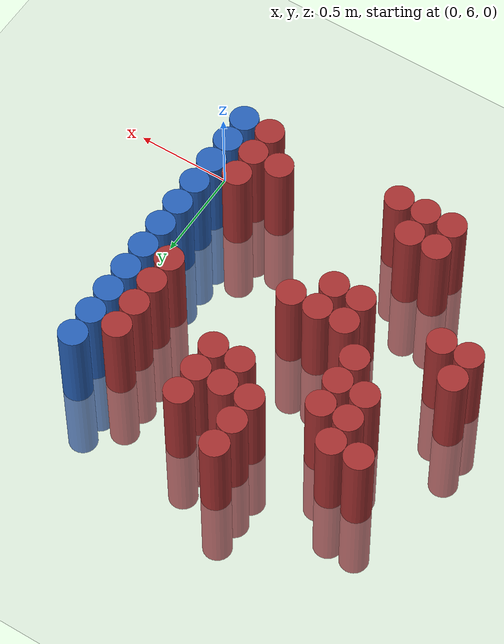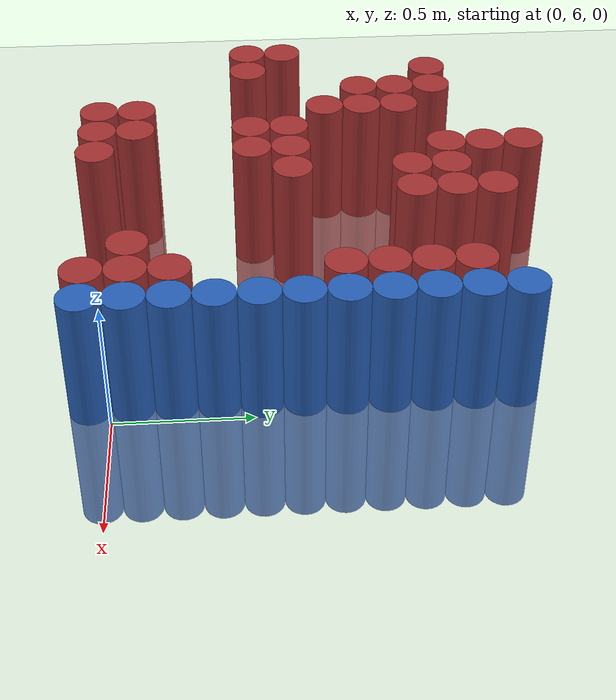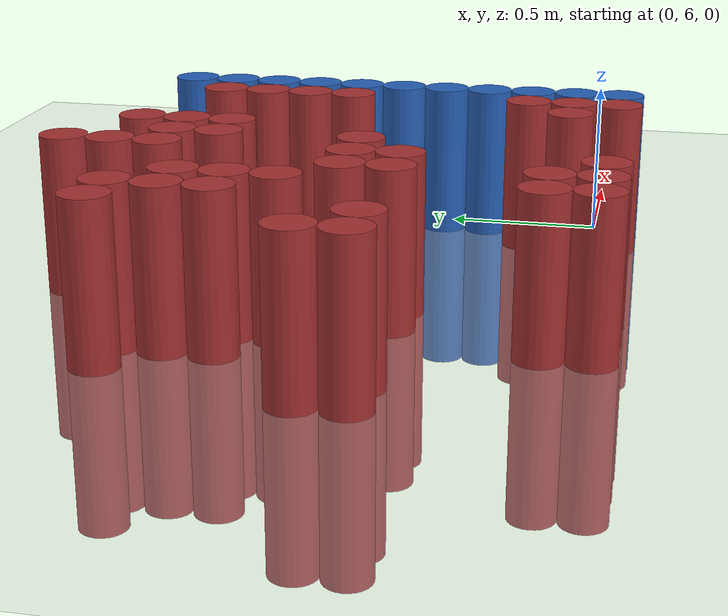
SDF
<sdf version="1.6">
 <world name="default">
  <model name="ground_plane">
   <static>1</static>
   <link name="link">
    <collision name="collision">
     <geometry><plane><normal>0 0 1</normal><size>100 100</size></plane></geometry>
     <surface><friction><ode><mu>100</mu><mu2>50</mu2></ode></friction></surface>
    </collision>
    <visual name="visual">
     <cast_shadows>0</cast_shadows>
     <geometry><plane><normal>0 0 1</normal><size>100 100</size></plane></geometry>
     <material>
      <script><uri>file://media/materials/scripts/gazebo.material</uri><name>Gazebo/Grey</name></script>
     </material>
    </visual>
   </link>
  </model>
  <model name="unit_cylinder_213">
   <static>1</static>
   <pose>-1.725000 6.525000 0.000000 0.000000 0.000000 0.000000</pose>
   <link name="link">
    <inertial>
     <mass>1</mass>
     <inertia><ixx>0.145833</ixx><ixy>0</ixy><ixz>0</ixz><iyy>0.145833</iyy><iyz>0</iyz><izz>0.125</izz></inertia>
    </inertial>
    <collision name="collision">
     <geometry><cylinder><radius>0.075000</radius><length>1</length></cylinder></geometry>
    </collision>
    <visual name="visual">
     <geometry><cylinder><radius>0.075000</radius><length>1</length></cylinder></geometry>
     <material>
      <ambient>0.648000 0.192000 0.192000 1</ambient>
      <diffuse>0.648000 0.192000 0.192000 1</diffuse>
     </material>
     <material>
      <script><name>Gazebo/Grey</name><uri>file://media/materials/scripts/gazebo.material</uri></script>
     </material>
    </visual>
   </link>
  </model>
  <model name="unit_cylinder_214">
   <static>1</static>
   <pose>-1.725000 6.675000 0.000000 0.000000 0.000000 0.000000</pose>
   <link name="link">
    <inertial>
     <mass>1</mass>
     <inertia><ixx>0.145833</ixx><ixy>0</ixy><ixz>0</ixz><iyy>0.145833</iyy><iyz>0</iyz><izz>0.125</izz></inertia>
    </inertial>
    <collision name="collision">
     <geometry><cylinder><radius>0.075000</radius><length>1</length></cylinder></geometry>
    </collision>
    <visual name="visual">
     <geometry><cylinder><radius>0.075000</radius><length>1</length></cylinder></geometry>
     <material>
      <ambient>0.648000 0.192000 0.192000 1</ambient>
      <diffuse>0.648000 0.192000 0.192000 1</diffuse>
     </material>
     <material>
      <script><name>Gazebo/Grey</name><uri>file://media/materials/scripts/gazebo.material</uri></script>
     </material>
    </visual>
   </link>
  </model>
  <model name="unit_cylinder_221">
   <static>1</static>
   <pose>-1.575000 6.525000 0.000000 0.000000 0.000000 0.000000</pose>
   <link name="link">
    <inertial>
     <mass>1</mass>
     <inertia><ixx>0.145833</ixx><ixy>0</ixy><ixz>0</ixz><iyy>0.145833</iyy><iyz>0</iyz><izz>0.125</izz></inertia>
    </inertial>
    <collision name="collision">
     <geometry><cylinder><radius>0.075000</radius><length>1</length></cylinder></geometry>
    </collision>
    <visual name="visual">
     <geometry><cylinder><radius>0.075000</radius><length>1</length></cylinder></geometry>
     <material>
      <ambient>0.648000 0.192000 0.192000 1</ambient>
      <diffuse>0.648000 0.192000 0.192000 1</diffuse>
     </material>
     <material>
      <script><name>Gazebo/Grey</name><uri>file://media/materials/scripts/gazebo.material</uri></script>
     </material>
    </visual>
   </link>
  </model>
  <model name="unit_cylinder_222">
   <static>1</static>
   <pose>-1.575000 7.275000 0.000000 0.000000 0.000000 0.000000</pose>
   <link name="link">
    <inertial>
     <mass>1</mass>
     <inertia><ixx>0.145833</ixx><ixy>0</ixy><ixz>0</ixz><iyy>0.145833</iyy><iyz>0</iyz><izz>0.125</izz></inertia>
    </inertial>
    <collision name="collision">
     <geometry><cylinder><radius>0.075000</radius><length>1</length></cylinder></geometry>
    </collision>
    <visual name="visual">
     <geometry><cylinder><radius>0.075000</radius><length>1</length></cylinder></geometry>
     <material>
      <ambient>0.648000 0.192000 0.192000 1</ambient>
      <diffuse>0.648000 0.192000 0.192000 1</diffuse>
     </material>
     <material>
      <script><name>Gazebo/Grey</name><uri>file://media/materials/scripts/gazebo.material</uri></script>
     </material>
    </visual>
   </link>
  </model>
  <model name="unit_cylinder_228">
   <static>1</static>
   <pose>-1.425000 6.975000 0.000000 0.000000 0.000000 0.000000</pose>
   <link name="link">
    <inertial>
     <mass>1</mass>
     <inertia><ixx>0.145833</ixx><ixy>0</ixy><ixz>0</ixz><iyy>0.145833</iyy><iyz>0</iyz><izz>0.125</izz></inertia>
    </inertial>
    <collision name="collision">
     <geometry><cylinder><radius>0.075000</radius><length>1</length></cylinder></geometry>
    </collision>
    <visual name="visual">
     <geometry><cylinder><radius>0.075000</radius><length>1</length></cylinder></geometry>
     <material>
      <ambient>0.648000 0.192000 0.192000 1</ambient>
      <diffuse>0.648000 0.192000 0.192000 1</diffuse>
     </material>
     <material>
      <script><name>Gazebo/Grey</name><uri>file://media/materials/scripts/gazebo.material</uri></script>
     </material>
    </visual>
   </link>
  </model>
  <model name="unit_cylinder_229">
   <static>1</static>
   <pose>-1.425000 7.125000 0.000000 0.000000 0.000000 0.000000</pose>
   <link name="link">
    <inertial>
     <mass>1</mass>
     <inertia><ixx>0.145833</ixx><ixy>0</ixy><ixz>0</ixz><iyy>0.145833</iyy><iyz>0</iyz><izz>0.125</izz></inertia>
    </inertial>
    <collision name="collision">
     <geometry><cylinder><radius>0.075000</radius><length>1</length></cylinder></geometry>
    </collision>
    <visual name="visual">
     <geometry><cylinder><radius>0.075000</radius><length>1</length></cylinder></geometry>
     <material>
      <ambient>0.648000 0.192000 0.192000 1</ambient>
      <diffuse>0.648000 0.192000 0.192000 1</diffuse>
     </material>
     <material>
      <script><name>Gazebo/Grey</name><uri>file://media/materials/scripts/gazebo.material</uri></script>
     </material>
    </visual>
   </link>
  </model>
  <model name="unit_cylinder_230">
   <static>1</static>
   <pose>-1.425000 7.275000 0.000000 0.000000 0.000000 0.000000</pose>
   <link name="link">
    <inertial>
     <mass>1</mass>
     <inertia><ixx>0.145833</ixx><ixy>0</ixy><ixz>0</ixz><iyy>0.145833</iyy><iyz>0</iyz><izz>0.125</izz></inertia>
    </inertial>
    <collision name="collision">
     <geometry><cylinder><radius>0.075000</radius><length>1</length></cylinder></geometry>
    </collision>
    <visual name="visual">
     <geometry><cylinder><radius>0.075000</radius><length>1</length></cylinder></geometry>
     <material>
      <ambient>0.648000 0.192000 0.192000 1</ambient>
      <diffuse>0.648000 0.192000 0.192000 1</diffuse>
     </material>
     <material>
      <script><name>Gazebo/Grey</name><uri>file://media/materials/scripts/gazebo.material</uri></script>
     </material>
    </visual>
   </link>
  </model>
  <model name="unit_cylinder_232">
   <static>1</static>
   <pose>-1.275000 5.925000 0.000000 0.000000 0.000000 0.000000</pose>
   <link name="link">
    <inertial>
     <mass>1</mass>
     <inertia><ixx>0.145833</ixx><ixy>0</ixy><ixz>0</ixz><iyy>0.145833</iyy><iyz>0</iyz><izz>0.125</izz></inertia>
    </inertial>
    <collision name="collision">
     <geometry><cylinder><radius>0.075000</radius><length>1</length></cylinder></geometry>
    </collision>
    <visual name="visual">
     <geometry><cylinder><radius>0.075000</radius><length>1</length></cylinder></geometry>
     <material>
      <ambient>0.648000 0.192000 0.192000 1</ambient>
      <diffuse>0.648000 0.192000 0.192000 1</diffuse>
     </material>
     <material>
      <script><name>Gazebo/Grey</name><uri>file://media/materials/scripts/gazebo.material</uri></script>
     </material>
    </visual>
   </link>
  </model>
  <model name="unit_cylinder_233">
   <static>1</static>
   <pose>-1.275000 6.075000 0.000000 0.000000 0.000000 0.000000</pose>
   <link name="link">
    <inertial>
     <mass>1</mass>
     <inertia><ixx>0.145833</ixx><ixy>0</ixy><ixz>0</ixz><iyy>0.145833</iyy><iyz>0</iyz><izz>0.125</izz></inertia>
    </inertial>
    <collision name="collision">
     <geometry><cylinder><radius>0.075000</radius><length>1</length></cylinder></geometry>
    </collision>
    <visual name="visual">
     <geometry><cylinder><radius>0.075000</radius><length>1</length></cylinder></geometry>
     <material>
      <ambient>0.648000 0.192000 0.192000 1</ambient>
      <diffuse>0.648000 0.192000 0.192000 1</diffuse>
     </material>
     <material>
      <script><name>Gazebo/Grey</name><uri>file://media/materials/scripts/gazebo.material</uri></script>
     </material>
    </visual>
   </link>
  </model>
  <model name="unit_cylinder_234">
   <static>1</static>
   <pose>-1.275000 6.825000 0.000000 0.000000 0.000000 0.000000</pose>
   <link name="link">
    <inertial>
     <mass>1</mass>
     <inertia><ixx>0.145833</ixx><ixy>0</ixy><ixz>0</ixz><iyy>0.145833</iyy><iyz>0</iyz><izz>0.125</izz></inertia>
    </inertial>
    <collision name="collision">
     <geometry><cylinder><radius>0.075000</radius><length>1</length></cylinder></geometry>
    </collision>
    <visual name="visual">
     <geometry><cylinder><radius>0.075000</radius><length>1</length></cylinder></geometry>
     <material>
      <ambient>0.648000 0.192000 0.192000 1</ambient>
      <diffuse>0.648000 0.192000 0.192000 1</diffuse>
     </material>
     <material>
      <script><name>Gazebo/Grey</name><uri>file://media/materials/scripts/gazebo.material</uri></script>
     </material>
    </visual>
   </link>
  </model>
  <model name="unit_cylinder_235">
   <static>1</static>
   <pose>-1.275000 6.975000 0.000000 0.000000 0.000000 0.000000</pose>
   <link name="link">
    <inertial>
     <mass>1</mass>
     <inertia><ixx>0.145833</ixx><ixy>0</ixy><ixz>0</ixz><iyy>0.145833</iyy><iyz>0</iyz><izz>0.125</izz></inertia>
    </inertial>
    <collision name="collision">
     <geometry><cylinder><radius>0.075000</radius><length>1</length></cylinder></geometry>
    </collision>
    <visual name="visual">
     <geometry><cylinder><radius>0.075000</radius><length>1</length></cylinder></geometry>
     <material>
      <ambient>0.648000 0.192000 0.192000 1</ambient>
      <diffuse>0.648000 0.192000 0.192000 1</diffuse>
     </material>
     <material>
      <script><name>Gazebo/Grey</name><uri>file://media/materials/scripts/gazebo.material</uri></script>
     </material>
    </visual>
   </link>
  </model>
  <model name="unit_cylinder_236">
   <static>1</static>
   <pose>-1.275000 7.125000 0.000000 0.000000 0.000000 0.000000</pose>
   <link name="link">
    <inertial>
     <mass>1</mass>
     <inertia><ixx>0.145833</ixx><ixy>0</ixy><ixz>0</ixz><iyy>0.145833</iyy><iyz>0</iyz><izz>0.125</izz></inertia>
    </inertial>
    <collision name="collision">
     <geometry><cylinder><radius>0.075000</radius><length>1</length></cylinder></geometry>
    </collision>
    <visual name="visual">
     <geometry><cylinder><radius>0.075000</radius><length>1</length></cylinder></geometry>
     <material>
      <ambient>0.648000 0.192000 0.192000 1</ambient>
      <diffuse>0.648000 0.192000 0.192000 1</diffuse>
     </material>
     <material>
      <script><name>Gazebo/Grey</name><uri>file://media/materials/scripts/gazebo.material</uri></script>
     </material>
    </visual>
   </link>
  </model>
  <model name="unit_cylinder_241">
   <static>1</static>
   <pose>-1.125000 5.925000 0.000000 0.000000 0.000000 0.000000</pose>
   <link name="link">
    <inertial>
     <mass>1</mass>
     <inertia><ixx>0.145833</ixx><ixy>0</ixy><ixz>0</ixz><iyy>0.145833</iyy><iyz>0</iyz><izz>0.125</izz></inertia>
    </inertial>
    <collision name="collision">
     <geometry><cylinder><radius>0.075000</radius><length>1</length></cylinder></geometry>
    </collision>
    <visual name="visual">
     <geometry><cylinder><radius>0.075000</radius><length>1</length></cylinder></geometry>
     <material>
      <ambient>0.648000 0.192000 0.192000 1</ambient>
      <diffuse>0.648000 0.192000 0.192000 1</diffuse>
     </material>
     <material>
      <script><name>Gazebo/Grey</name><uri>file://media/materials/scripts/gazebo.material</uri></script>
     </material>
    </visual>
   </link>
  </model>
  <model name="unit_cylinder_242">
   <static>1</static>
   <pose>-1.125000 6.075000 0.000000 0.000000 0.000000 0.000000</pose>
   <link name="link">
    <inertial>
     <mass>1</mass>
     <inertia><ixx>0.145833</ixx><ixy>0</ixy><ixz>0</ixz><iyy>0.145833</iyy><iyz>0</iyz><izz>0.125</izz></inertia>
    </inertial>
    <collision name="collision">
     <geometry><cylinder><radius>0.075000</radius><length>1</length></cylinder></geometry>
    </collision>
    <visual name="visual">
     <geometry><cylinder><radius>0.075000</radius><length>1</length></cylinder></geometry>
     <material>
      <ambient>0.648000 0.192000 0.192000 1</ambient>
      <diffuse>0.648000 0.192000 0.192000 1</diffuse>
     </material>
     <material>
      <script><name>Gazebo/Grey</name><uri>file://media/materials/scripts/gazebo.material</uri></script>
     </material>
    </visual>
   </link>
  </model>
  <model name="unit_cylinder_243">
   <static>1</static>
   <pose>-1.125000 6.525000 0.000000 0.000000 0.000000 0.000000</pose>
   <link name="link">
    <inertial>
     <mass>1</mass>
     <inertia><ixx>0.145833</ixx><ixy>0</ixy><ixz>0</ixz><iyy>0.145833</iyy><iyz>0</iyz><izz>0.125</izz></inertia>
    </inertial>
    <collision name="collision">
     <geometry><cylinder><radius>0.075000</radius><length>1</length></cylinder></geometry>
    </collision>
    <visual name="visual">
     <geometry><cylinder><radius>0.075000</radius><length>1</length></cylinder></geometry>
     <material>
      <ambient>0.648000 0.192000 0.192000 1</ambient>
      <diffuse>0.648000 0.192000 0.192000 1</diffuse>
     </material>
     <material>
      <script><name>Gazebo/Grey</name><uri>file://media/materials/scripts/gazebo.material</uri></script>
     </material>
    </visual>
   </link>
  </model>
  <model name="unit_cylinder_244">
   <static>1</static>
   <pose>-1.125000 6.675000 0.000000 0.000000 0.000000 0.000000</pose>
   <link name="link">
    <inertial>
     <mass>1</mass>
     <inertia><ixx>0.145833</ixx><ixy>0</ixy><ixz>0</ixz><iyy>0.145833</iyy><iyz>0</iyz><izz>0.125</izz></inertia>
    </inertial>
    <collision name="collision">
     <geometry><cylinder><radius>0.075000</radius><length>1</length></cylinder></geometry>
    </collision>
    <visual name="visual">
     <geometry><cylinder><radius>0.075000</radius><length>1</length></cylinder></geometry>
     <material>
      <ambient>0.648000 0.192000 0.192000 1</ambient>
      <diffuse>0.648000 0.192000 0.192000 1</diffuse>
     </material>
     <material>
      <script><name>Gazebo/Grey</name><uri>file://media/materials/scripts/gazebo.material</uri></script>
     </material>
    </visual>
   </link>
  </model>
  <model name="unit_cylinder_252">
   <static>1</static>
   <pose>-0.975000 5.925000 0.000000 0.000000 0.000000 0.000000</pose>
   <link name="link">
    <inertial>
     <mass>1</mass>
     <inertia><ixx>0.145833</ixx><ixy>0</ixy><ixz>0</ixz><iyy>0.145833</iyy><iyz>0</iyz><izz>0.125</izz></inertia>
    </inertial>
    <collision name="collision">
     <geometry><cylinder><radius>0.075000</radius><length>1</length></cylinder></geometry>
    </collision>
    <visual name="visual">
     <geometry><cylinder><radius>0.075000</radius><length>1</length></cylinder></geometry>
     <material>
      <ambient>0.648000 0.192000 0.192000 1</ambient>
      <diffuse>0.648000 0.192000 0.192000 1</diffuse>
     </material>
     <material>
      <script><name>Gazebo/Grey</name><uri>file://media/materials/scripts/gazebo.material</uri></script>
     </material>
    </visual>
   </link>
  </model>
  <model name="unit_cylinder_253">
   <static>1</static>
   <pose>-0.975000 6.525000 0.000000 0.000000 0.000000 0.000000</pose>
   <link name="link">
    <inertial>
     <mass>1</mass>
     <inertia><ixx>0.145833</ixx><ixy>0</ixy><ixz>0</ixz><iyy>0.145833</iyy><iyz>0</iyz><izz>0.125</izz></inertia>
    </inertial>
    <collision name="collision">
     <geometry><cylinder><radius>0.075000</radius><length>1</length></cylinder></geometry>
    </collision>
    <visual name="visual">
     <geometry><cylinder><radius>0.075000</radius><length>1</length></cylinder></geometry>
     <material>
      <ambient>0.648000 0.192000 0.192000 1</ambient>
      <diffuse>0.648000 0.192000 0.192000 1</diffuse>
     </material>
     <material>
      <script><name>Gazebo/Grey</name><uri>file://media/materials/scripts/gazebo.material</uri></script>
     </material>
    </visual>
   </link>
  </model>
  <model name="unit_cylinder_254">
   <static>1</static>
   <pose>-0.975000 6.675000 0.000000 0.000000 0.000000 0.000000</pose>
   <link name="link">
    <inertial>
     <mass>1</mass>
     <inertia><ixx>0.145833</ixx><ixy>0</ixy><ixz>0</ixz><iyy>0.145833</iyy><iyz>0</iyz><izz>0.125</izz></inertia>
    </inertial>
    <collision name="collision">
     <geometry><cylinder><radius>0.075000</radius><length>1</length></cylinder></geometry>
    </collision>
    <visual name="visual">
     <geometry><cylinder><radius>0.075000</radius><length>1</length></cylinder></geometry>
     <material>
      <ambient>0.648000 0.192000 0.192000 1</ambient>
      <diffuse>0.648000 0.192000 0.192000 1</diffuse>
     </material>
     <material>
      <script><name>Gazebo/Grey</name><uri>file://media/materials/scripts/gazebo.material</uri></script>
     </material>
    </visual>
   </link>
  </model>
  <model name="unit_cylinder_255">
   <static>1</static>
   <pose>-0.975000 7.275000 0.000000 0.000000 0.000000 0.000000</pose>
   <link name="link">
    <inertial>
     <mass>1</mass>
     <inertia><ixx>0.145833</ixx><ixy>0</ixy><ixz>0</ixz><iyy>0.145833</iyy><iyz>0</iyz><izz>0.125</izz></inertia>
    </inertial>
    <collision name="collision">
     <geometry><cylinder><radius>0.075000</radius><length>1</length></cylinder></geometry>
    </collision>
    <visual name="visual">
     <geometry><cylinder><radius>0.075000</radius><length>1</length></cylinder></geometry>
     <material>
      <ambient>0.648000 0.192000 0.192000 1</ambient>
      <diffuse>0.648000 0.192000 0.192000 1</diffuse>
     </material>
     <material>
      <script><name>Gazebo/Grey</name><uri>file://media/materials/scripts/gazebo.material</uri></script>
     </material>
    </visual>
   </link>
  </model>
  <model name="unit_cylinder_256">
   <static>1</static>
   <pose>-0.975000 7.425000 0.000000 0.000000 0.000000 0.000000</pose>
   <link name="link">
    <inertial>
     <mass>1</mass>
     <inertia><ixx>0.145833</ixx><ixy>0</ixy><ixz>0</ixz><iyy>0.145833</iyy><iyz>0</iyz><izz>0.125</izz></inertia>
    </inertial>
    <collision name="collision">
     <geometry><cylinder><radius>0.075000</radius><length>1</length></cylinder></geometry>
    </collision>
    <visual name="visual">
     <geometry><cylinder><radius>0.075000</radius><length>1</length></cylinder></geometry>
     <material>
      <ambient>0.648000 0.192000 0.192000 1</ambient>
      <diffuse>0.648000 0.192000 0.192000 1</diffuse>
     </material>
     <material>
      <script><name>Gazebo/Grey</name><uri>file://media/materials/scripts/gazebo.material</uri></script>
     </material>
    </visual>
   </link>
  </model>
  <model name="unit_cylinder_257">
   <static>1</static>
   <pose>-0.975000 7.575000 0.000000 0.000000 0.000000 0.000000</pose>
   <link name="link">
    <inertial>
     <mass>1</mass>
     <inertia><ixx>0.145833</ixx><ixy>0</ixy><ixz>0</ixz><iyy>0.145833</iyy><iyz>0</iyz><izz>0.125</izz></inertia>
    </inertial>
    <collision name="collision">
     <geometry><cylinder><radius>0.075000</radius><length>1</length></cylinder></geometry>
    </collision>
    <visual name="visual">
     <geometry><cylinder><radius>0.075000</radius><length>1</length></cylinder></geometry>
     <material>
      <ambient>0.648000 0.192000 0.192000 1</ambient>
      <diffuse>0.648000 0.192000 0.192000 1</diffuse>
     </material>
     <material>
      <script><name>Gazebo/Grey</name><uri>file://media/materials/scripts/gazebo.material</uri></script>
     </material>
    </visual>
   </link>
  </model>
  <model name="unit_cylinder_269">
   <static>1</static>
   <pose>-0.825000 6.675000 0.000000 0.000000 0.000000 0.000000</pose>
   <link name="link">
    <inertial>
     <mass>1</mass>
     <inertia><ixx>0.145833</ixx><ixy>0</ixy><ixz>0</ixz><iyy>0.145833</iyy><iyz>0</iyz><izz>0.125</izz></inertia>
    </inertial>
    <collision name="collision">
     <geometry><cylinder><radius>0.075000</radius><length>1</length></cylinder></geometry>
    </collision>
    <visual name="visual">
     <geometry><cylinder><radius>0.075000</radius><length>1</length></cylinder></geometry>
     <material>
      <ambient>0.648000 0.192000 0.192000 1</ambient>
      <diffuse>0.648000 0.192000 0.192000 1</diffuse>
     </material>
     <material>
      <script><name>Gazebo/Grey</name><uri>file://media/materials/scripts/gazebo.material</uri></script>
     </material>
    </visual>
   </link>
  </model>
  <model name="unit_cylinder_270">
   <static>1</static>
   <pose>-0.825000 7.125000 0.000000 0.000000 0.000000 0.000000</pose>
   <link name="link">
    <inertial>
     <mass>1</mass>
     <inertia><ixx>0.145833</ixx><ixy>0</ixy><ixz>0</ixz><iyy>0.145833</iyy><iyz>0</iyz><izz>0.125</izz></inertia>
    </inertial>
    <collision name="collision">
     <geometry><cylinder><radius>0.075000</radius><length>1</length></cylinder></geometry>
    </collision>
    <visual name="visual">
     <geometry><cylinder><radius>0.075000</radius><length>1</length></cylinder></geometry>
     <material>
      <ambient>0.648000 0.192000 0.192000 1</ambient>
      <diffuse>0.648000 0.192000 0.192000 1</diffuse>
     </material>
     <material>
      <script><name>Gazebo/Grey</name><uri>file://media/materials/scripts/gazebo.material</uri></script>
     </material>
    </visual>
   </link>
  </model>
  <model name="unit_cylinder_271">
   <static>1</static>
   <pose>-0.825000 7.275000 0.000000 0.000000 0.000000 0.000000</pose>
   <link name="link">
    <inertial>
     <mass>1</mass>
     <inertia><ixx>0.145833</ixx><ixy>0</ixy><ixz>0</ixz><iyy>0.145833</iyy><iyz>0</iyz><izz>0.125</izz></inertia>
    </inertial>
    <collision name="collision">
     <geometry><cylinder><radius>0.075000</radius><length>1</length></cylinder></geometry>
    </collision>
    <visual name="visual">
     <geometry><cylinder><radius>0.075000</radius><length>1</length></cylinder></geometry>
     <material>
      <ambient>0.648000 0.192000 0.192000 1</ambient>
      <diffuse>0.648000 0.192000 0.192000 1</diffuse>
     </material>
     <material>
      <script><name>Gazebo/Grey</name><uri>file://media/materials/scripts/gazebo.material</uri></script>
     </material>
    </visual>
   </link>
  </model>
  <model name="unit_cylinder_277">
   <static>1</static>
   <pose>-0.675000 7.125000 0.000000 0.000000 0.000000 0.000000</pose>
   <link name="link">
    <inertial>
     <mass>1</mass>
     <inertia><ixx>0.145833</ixx><ixy>0</ixy><ixz>0</ixz><iyy>0.145833</iyy><iyz>0</iyz><izz>0.125</izz></inertia>
    </inertial>
    <collision name="collision">
     <geometry><cylinder><radius>0.075000</radius><length>1</length></cylinder></geometry>
    </collision>
    <visual name="visual">
     <geometry><cylinder><radius>0.075000</radius><length>1</length></cylinder></geometry>
     <material>
      <ambient>0.648000 0.192000 0.192000 1</ambient>
      <diffuse>0.648000 0.192000 0.192000 1</diffuse>
     </material>
     <material>
      <script><name>Gazebo/Grey</name><uri>file://media/materials/scripts/gazebo.material</uri></script>
     </material>
    </visual>
   </link>
  </model>
  <model name="unit_cylinder_278">
   <static>1</static>
   <pose>-0.675000 7.275000 0.000000 0.000000 0.000000 0.000000</pose>
   <link name="link">
    <inertial>
     <mass>1</mass>
     <inertia><ixx>0.145833</ixx><ixy>0</ixy><ixz>0</ixz><iyy>0.145833</iyy><iyz>0</iyz><izz>0.125</izz></inertia>
    </inertial>
    <collision name="collision">
     <geometry><cylinder><radius>0.075000</radius><length>1</length></cylinder></geometry>
    </collision>
    <visual name="visual">
     <geometry><cylinder><radius>0.075000</radius><length>1</length></cylinder></geometry>
     <material>
      <ambient>0.648000 0.192000 0.192000 1</ambient>
      <diffuse>0.648000 0.192000 0.192000 1</diffuse>
     </material>
     <material>
      <script><name>Gazebo/Grey</name><uri>file://media/materials/scripts/gazebo.material</uri></script>
     </material>
    </visual>
   </link>
  </model>
  <model name="unit_cylinder_279">
   <static>1</static>
   <pose>-0.675000 7.425000 0.000000 0.000000 0.000000 0.000000</pose>
   <link name="link">
    <inertial>
     <mass>1</mass>
     <inertia><ixx>0.145833</ixx><ixy>0</ixy><ixz>0</ixz><iyy>0.145833</iyy><iyz>0</iyz><izz>0.125</izz></inertia>
    </inertial>
    <collision name="collision">
     <geometry><cylinder><radius>0.075000</radius><length>1</length></cylinder></geometry>
    </collision>
    <visual name="visual">
     <geometry><cylinder><radius>0.075000</radius><length>1</length></cylinder></geometry>
     <material>
      <ambient>0.648000 0.192000 0.192000 1</ambient>
      <diffuse>0.648000 0.192000 0.192000 1</diffuse>
     </material>
     <material>
      <script><name>Gazebo/Grey</name><uri>file://media/materials/scripts/gazebo.material</uri></script>
     </material>
    </visual>
   </link>
  </model>
  <model name="unit_cylinder_287">
   <static>1</static>
   <pose>-0.375000 6.075000 0.000000 0.000000 0.000000 0.000000</pose>
   <link name="link">
    <inertial>
     <mass>1</mass>
     <inertia><ixx>0.145833</ixx><ixy>0</ixy><ixz>0</ixz><iyy>0.145833</iyy><iyz>0</iyz><izz>0.125</izz></inertia>
    </inertial>
    <collision name="collision">
     <geometry><cylinder><radius>0.075000</radius><length>1</length></cylinder></geometry>
    </collision>
    <visual name="visual">
     <geometry><cylinder><radius>0.075000</radius><length>1</length></cylinder></geometry>
     <material>
      <ambient>0.648000 0.192000 0.192000 1</ambient>
      <diffuse>0.648000 0.192000 0.192000 1</diffuse>
     </material>
     <material>
      <script><name>Gazebo/Grey</name><uri>file://media/materials/scripts/gazebo.material</uri></script>
     </material>
    </visual>
   </link>
  </model>
  <model name="unit_cylinder_292">
   <static>1</static>
   <pose>-0.225000 5.925000 0.000000 0.000000 0.000000 0.000000</pose>
   <link name="link">
    <inertial>
     <mass>1</mass>
     <inertia><ixx>0.145833</ixx><ixy>0</ixy><ixz>0</ixz><iyy>0.145833</iyy><iyz>0</iyz><izz>0.125</izz></inertia>
    </inertial>
    <collision name="collision">
     <geometry><cylinder><radius>0.075000</radius><length>1</length></cylinder></geometry>
    </collision>
    <visual name="visual">
     <geometry><cylinder><radius>0.075000</radius><length>1</length></cylinder></geometry>
     <material>
      <ambient>0.648000 0.192000 0.192000 1</ambient>
      <diffuse>0.648000 0.192000 0.192000 1</diffuse>
     </material>
     <material>
      <script><name>Gazebo/Grey</name><uri>file://media/materials/scripts/gazebo.material</uri></script>
     </material>
    </visual>
   </link>
  </model>
  <model name="unit_cylinder_293">
   <static>1</static>
   <pose>-0.225000 6.075000 0.000000 0.000000 0.000000 0.000000</pose>
   <link name="link">
    <inertial>
     <mass>1</mass>
     <inertia><ixx>0.145833</ixx><ixy>0</ixy><ixz>0</ixz><iyy>0.145833</iyy><iyz>0</iyz><izz>0.125</izz></inertia>
    </inertial>
    <collision name="collision">
     <geometry><cylinder><radius>0.075000</radius><length>1</length></cylinder></geometry>
    </collision>
    <visual name="visual">
     <geometry><cylinder><radius>0.075000</radius><length>1</length></cylinder></geometry>
     <material>
      <ambient>0.648000 0.192000 0.192000 1</ambient>
      <diffuse>0.648000 0.192000 0.192000 1</diffuse>
     </material>
     <material>
      <script><name>Gazebo/Grey</name><uri>file://media/materials/scripts/gazebo.material</uri></script>
     </material>
    </visual>
   </link>
  </model>
  <model name="unit_cylinder_294">
   <static>1</static>
   <pose>-0.225000 6.225000 0.000000 0.000000 0.000000 0.000000</pose>
   <link name="link">
    <inertial>
     <mass>1</mass>
     <inertia><ixx>0.145833</ixx><ixy>0</ixy><ixz>0</ixz><iyy>0.145833</iyy><iyz>0</iyz><izz>0.125</izz></inertia>
    </inertial>
    <collision name="collision">
     <geometry><cylinder><radius>0.075000</radius><length>1</length></cylinder></geometry>
    </collision>
    <visual name="visual">
     <geometry><cylinder><radius>0.075000</radius><length>1</length></cylinder></geometry>
     <material>
      <ambient>0.648000 0.192000 0.192000 1</ambient>
      <diffuse>0.648000 0.192000 0.192000 1</diffuse>
     </material>
     <material>
      <script><name>Gazebo/Grey</name><uri>file://media/materials/scripts/gazebo.material</uri></script>
     </material>
    </visual>
   </link>
  </model>
  <model name="unit_cylinder_295">
   <static>1</static>
   <pose>-0.225000 6.825000 0.000000 0.000000 0.000000 0.000000</pose>
   <link name="link">
    <inertial>
     <mass>1</mass>
     <inertia><ixx>0.145833</ixx><ixy>0</ixy><ixz>0</ixz><iyy>0.145833</iyy><iyz>0</iyz><izz>0.125</izz></inertia>
    </inertial>
    <collision name="collision">
     <geometry><cylinder><radius>0.075000</radius><length>1</length></cylinder></geometry>
    </collision>
    <visual name="visual">
     <geometry><cylinder><radius>0.075000</radius><length>1</length></cylinder></geometry>
     <material>
      <ambient>0.648000 0.192000 0.192000 1</ambient>
      <diffuse>0.648000 0.192000 0.192000 1</diffuse>
     </material>
     <material>
      <script><name>Gazebo/Grey</name><uri>file://media/materials/scripts/gazebo.material</uri></script>
     </material>
    </visual>
   </link>
  </model>
  <model name="unit_cylinder_296">
   <static>1</static>
   <pose>-0.225000 6.975000 0.000000 0.000000 0.000000 0.000000</pose>
   <link name="link">
    <inertial>
     <mass>1</mass>
     <inertia><ixx>0.145833</ixx><ixy>0</ixy><ixz>0</ixz><iyy>0.145833</iyy><iyz>0</iyz><izz>0.125</izz></inertia>
    </inertial>
    <collision name="collision">
     <geometry><cylinder><radius>0.075000</radius><length>1</length></cylinder></geometry>
    </collision>
    <visual name="visual">
     <geometry><cylinder><radius>0.075000</radius><length>1</length></cylinder></geometry>
     <material>
      <ambient>0.648000 0.192000 0.192000 1</ambient>
      <diffuse>0.648000 0.192000 0.192000 1</diffuse>
     </material>
     <material>
      <script><name>Gazebo/Grey</name><uri>file://media/materials/scripts/gazebo.material</uri></script>
     </material>
    </visual>
   </link>
  </model>
  <model name="unit_cylinder_297">
   <static>1</static>
   <pose>-0.225000 7.125000 0.000000 0.000000 0.000000 0.000000</pose>
   <link name="link">
    <inertial>
     <mass>1</mass>
     <inertia><ixx>0.145833</ixx><ixy>0</ixy><ixz>0</ixz><iyy>0.145833</iyy><iyz>0</iyz><izz>0.125</izz></inertia>
    </inertial>
    <collision name="collision">
     <geometry><cylinder><radius>0.075000</radius><length>1</length></cylinder></geometry>
    </collision>
    <visual name="visual">
     <geometry><cylinder><radius>0.075000</radius><length>1</length></cylinder></geometry>
     <material>
      <ambient>0.648000 0.192000 0.192000 1</ambient>
      <diffuse>0.648000 0.192000 0.192000 1</diffuse>
     </material>
     <material>
      <script><name>Gazebo/Grey</name><uri>file://media/materials/scripts/gazebo.material</uri></script>
     </material>
    </visual>
   </link>
  </model>
  <model name="unit_cylinder_298">
   <static>1</static>
   <pose>-0.225000 7.275000 0.000000 0.000000 0.000000 0.000000</pose>
   <link name="link">
    <inertial>
     <mass>1</mass>
     <inertia><ixx>0.145833</ixx><ixy>0</ixy><ixz>0</ixz><iyy>0.145833</iyy><iyz>0</iyz><izz>0.125</izz></inertia>
    </inertial>
    <collision name="collision">
     <geometry><cylinder><radius>0.075000</radius><length>1</length></cylinder></geometry>
    </collision>
    <visual name="visual">
     <geometry><cylinder><radius>0.075000</radius><length>1</length></cylinder></geometry>
     <material>
      <ambient>0.648000 0.192000 0.192000 1</ambient>
      <diffuse>0.648000 0.192000 0.192000 1</diffuse>
     </material>
     <material>
      <script><name>Gazebo/Grey</name><uri>file://media/materials/scripts/gazebo.material</uri></script>
     </material>
    </visual>
   </link>
  </model>
  <model name="unit_cylinder_307">
   <static>1</static>
   <pose>-0.075000 5.925000 0.000000 0.000000 0.000000 0.000000</pose>
   <link name="link">
    <inertial>
     <mass>1</mass>
     <inertia><ixx>0.145833</ixx><ixy>0</ixy><ixz>0</ixz><iyy>0.145833</iyy><iyz>0</iyz><izz>0.125</izz></inertia>
    </inertial>
    <collision name="collision">
     <geometry><cylinder><radius>0.075000</radius><length>1</length></cylinder></geometry>
    </collision>
    <visual name="visual">
     <geometry><cylinder><radius>0.075000</radius><length>1</length></cylinder></geometry>
     <material>
      <ambient>0.152000 0.379000 0.720000 1</ambient>
      <diffuse>0.152000 0.379000 0.720000 1</diffuse>
     </material>
     <material>
      <script><name>Gazebo/Grey</name><uri>file://media/materials/scripts/gazebo.material</uri></script>
     </material>
    </visual>
   </link>
  </model>
  <model name="unit_cylinder_308">
   <static>1</static>
   <pose>-0.075000 6.075000 0.000000 0.000000 0.000000 0.000000</pose>
   <link name="link">
    <inertial>
     <mass>1</mass>
     <inertia><ixx>0.145833</ixx><ixy>0</ixy><ixz>0</ixz><iyy>0.145833</iyy><iyz>0</iyz><izz>0.125</izz></inertia>
    </inertial>
    <collision name="collision">
     <geometry><cylinder><radius>0.075000</radius><length>1</length></cylinder></geometry>
    </collision>
    <visual name="visual">
     <geometry><cylinder><radius>0.075000</radius><length>1</length></cylinder></geometry>
     <material>
      <ambient>0.152000 0.379000 0.720000 1</ambient>
      <diffuse>0.152000 0.379000 0.720000 1</diffuse>
     </material>
     <material>
      <script><name>Gazebo/Grey</name><uri>file://media/materials/scripts/gazebo.material</uri></script>
     </material>
    </visual>
   </link>
  </model>
  <model name="unit_cylinder_309">
   <static>1</static>
   <pose>-0.075000 6.225000 0.000000 0.000000 0.000000 0.000000</pose>
   <link name="link">
    <inertial>
     <mass>1</mass>
     <inertia><ixx>0.145833</ixx><ixy>0</ixy><ixz>0</ixz><iyy>0.145833</iyy><iyz>0</iyz><izz>0.125</izz></inertia>
    </inertial>
    <collision name="collision">
     <geometry><cylinder><radius>0.075000</radius><length>1</length></cylinder></geometry>
    </collision>
    <visual name="visual">
     <geometry><cylinder><radius>0.075000</radius><length>1</length></cylinder></geometry>
     <material>
      <ambient>0.152000 0.379000 0.720000 1</ambient>
      <diffuse>0.152000 0.379000 0.720000 1</diffuse>
     </material>
     <material>
      <script><name>Gazebo/Grey</name><uri>file://media/materials/scripts/gazebo.material</uri></script>
     </material>
    </visual>
   </link>
  </model>
  <model name="unit_cylinder_310">
   <static>1</static>
   <pose>-0.075000 6.375000 0.000000 0.000000 0.000000 0.000000</pose>
   <link name="link">
    <inertial>
     <mass>1</mass>
     <inertia><ixx>0.145833</ixx><ixy>0</ixy><ixz>0</ixz><iyy>0.145833</iyy><iyz>0</iyz><izz>0.125</izz></inertia>
    </inertial>
    <collision name="collision">
     <geometry><cylinder><radius>0.075000</radius><length>1</length></cylinder></geometry>
    </collision>
    <visual name="visual">
     <geometry><cylinder><radius>0.075000</radius><length>1</length></cylinder></geometry>
     <material>
      <ambient>0.152000 0.379000 0.720000 1</ambient>
      <diffuse>0.152000 0.379000 0.720000 1</diffuse>
     </material>
     <material>
      <script><name>Gazebo/Grey</name><uri>file://media/materials/scripts/gazebo.material</uri></script>
     </material>
    </visual>
   </link>
  </model>
  <model name="unit_cylinder_311">
   <static>1</static>
   <pose>-0.075000 6.525000 0.000000 0.000000 0.000000 0.000000</pose>
   <link name="link">
    <inertial>
     <mass>1</mass>
     <inertia><ixx>0.145833</ixx><ixy>0</ixy><ixz>0</ixz><iyy>0.145833</iyy><iyz>0</iyz><izz>0.125</izz></inertia>
    </inertial>
    <collision name="collision">
     <geometry><cylinder><radius>0.075000</radius><length>1</length></cylinder></geometry>
    </collision>
    <visual name="visual">
     <geometry><cylinder><radius>0.075000</radius><length>1</length></cylinder></geometry>
     <material>
      <ambient>0.152000 0.379000 0.720000 1</ambient>
      <diffuse>0.152000 0.379000 0.720000 1</diffuse>
     </material>
     <material>
      <script><name>Gazebo/Grey</name><uri>file://media/materials/scripts/gazebo.material</uri></script>
     </material>
    </visual>
   </link>
  </model>
  <model name="unit_cylinder_312">
   <static>1</static>
   <pose>-0.075000 6.675000 0.000000 0.000000 0.000000 0.000000</pose>
   <link name="link">
    <inertial>
     <mass>1</mass>
     <inertia><ixx>0.145833</ixx><ixy>0</ixy><ixz>0</ixz><iyy>0.145833</iyy><iyz>0</iyz><izz>0.125</izz></inertia>
    </inertial>
    <collision name="collision">
     <geometry><cylinder><radius>0.075000</radius><length>1</length></cylinder></geometry>
    </collision>
    <visual name="visual">
     <geometry><cylinder><radius>0.075000</radius><length>1</length></cylinder></geometry>
     <material>
      <ambient>0.152000 0.379000 0.720000 1</ambient>
      <diffuse>0.152000 0.379000 0.720000 1</diffuse>
     </material>
     <material>
      <script><name>Gazebo/Grey</name><uri>file://media/materials/scripts/gazebo.material</uri></script>
     </material>
    </visual>
   </link>
  </model>
  <model name="unit_cylinder_313">
   <static>1</static>
   <pose>-0.075000 6.825000 0.000000 0.000000 0.000000 0.000000</pose>
   <link name="link">
    <inertial>
     <mass>1</mass>
     <inertia><ixx>0.145833</ixx><ixy>0</ixy><ixz>0</ixz><iyy>0.145833</iyy><iyz>0</iyz><izz>0.125</izz></inertia>
    </inertial>
    <collision name="collision">
     <geometry><cylinder><radius>0.075000</radius><length>1</length></cylinder></geometry>
    </collision>
    <visual name="visual">
     <geometry><cylinder><radius>0.075000</radius><length>1</length></cylinder></geometry>
     <material>
      <ambient>0.152000 0.379000 0.720000 1</ambient>
      <diffuse>0.152000 0.379000 0.720000 1</diffuse>
     </material>
     <material>
      <script><name>Gazebo/Grey</name><uri>file://media/materials/scripts/gazebo.material</uri></script>
     </material>
    </visual>
   </link>
  </model>
  <model name="unit_cylinder_314">
   <static>1</static>
   <pose>-0.075000 6.975000 0.000000 0.000000 0.000000 0.000000</pose>
   <link name="link">
    <inertial>
     <mass>1</mass>
     <inertia><ixx>0.145833</ixx><ixy>0</ixy><ixz>0</ixz><iyy>0.145833</iyy><iyz>0</iyz><izz>0.125</izz></inertia>
    </inertial>
    <collision name="collision">
     <geometry><cylinder><radius>0.075000</radius><length>1</length></cylinder></geometry>
    </collision>
    <visual name="visual">
     <geometry><cylinder><radius>0.075000</radius><length>1</length></cylinder></geometry>
     <material>
      <ambient>0.152000 0.379000 0.720000 1</ambient>
      <diffuse>0.152000 0.379000 0.720000 1</diffuse>
     </material>
     <material>
      <script><name>Gazebo/Grey</name><uri>file://media/materials/scripts/gazebo.material</uri></script>
     </material>
    </visual>
   </link>
  </model>
  <model name="unit_cylinder_315">
   <static>1</static>
   <pose>-0.075000 7.125000 0.000000 0.000000 0.000000 0.000000</pose>
   <link name="link">
    <inertial>
     <mass>1</mass>
     <inertia><ixx>0.145833</ixx><ixy>0</ixy><ixz>0</ixz><iyy>0.145833</iyy><iyz>0</iyz><izz>0.125</izz></inertia>
    </inertial>
    <collision name="collision">
     <geometry><cylinder><radius>0.075000</radius><length>1</length></cylinder></geometry>
    </collision>
    <visual name="visual">
     <geometry><cylinder><radius>0.075000</radius><length>1</length></cylinder></geometry>
     <material>
      <ambient>0.152000 0.379000 0.720000 1</ambient>
      <diffuse>0.152000 0.379000 0.720000 1</diffuse>
     </material>
     <material>
      <script><name>Gazebo/Grey</name><uri>file://media/materials/scripts/gazebo.material</uri></script>
     </material>
    </visual>
   </link>
  </model>
  <model name="unit_cylinder_316">
   <static>1</static>
   <pose>-0.075000 7.275000 0.000000 0.000000 0.000000 0.000000</pose>
   <link name="link">
    <inertial>
     <mass>1</mass>
     <inertia><ixx>0.145833</ixx><ixy>0</ixy><ixz>0</ixz><iyy>0.145833</iyy><iyz>0</iyz><izz>0.125</izz></inertia>
    </inertial>
    <collision name="collision">
     <geometry><cylinder><radius>0.075000</radius><length>1</length></cylinder></geometry>
    </collision>
    <visual name="visual">
     <geometry><cylinder><radius>0.075000</radius><length>1</length></cylinder></geometry>
     <material>
      <ambient>0.152000 0.379000 0.720000 1</ambient>
      <diffuse>0.152000 0.379000 0.720000 1</diffuse>
     </material>
     <material>
      <script><name>Gazebo/Grey</name><uri>file://media/materials/scripts/gazebo.material</uri></script>
     </material>
    </visual>
   </link>
  </model>
  <model name="unit_cylinder_317">
   <static>1</static>
   <pose>-0.075000 7.425000 0.000000 0.000000 0.000000 0.000000</pose>
   <link name="link">
    <inertial>
     <mass>1</mass>
     <inertia><ixx>0.145833</ixx><ixy>0</ixy><ixz>0</ixz><iyy>0.145833</iyy><iyz>0</iyz><izz>0.125</izz></inertia>
    </inertial>
    <collision name="collision">
     <geometry><cylinder><radius>0.075000</radius><length>1</length></cylinder></geometry>
    </collision>
    <visual name="visual">
     <geometry><cylinder><radius>0.075000</radius><length>1</length></cylinder></geometry>
     <material>
      <ambient>0.152000 0.379000 0.720000 1</ambient>
      <diffuse>0.152000 0.379000 0.720000 1</diffuse>
     </material>
     <material>
      <script><name>Gazebo/Grey</name><uri>file://media/materials/scripts/gazebo.material</uri></script>
     </material>
    </visual>
   </link>
  </model>
 </world>
</sdf>
